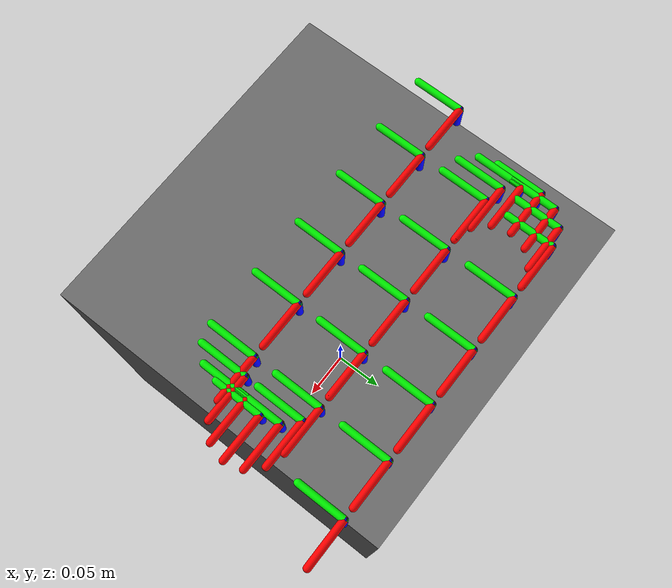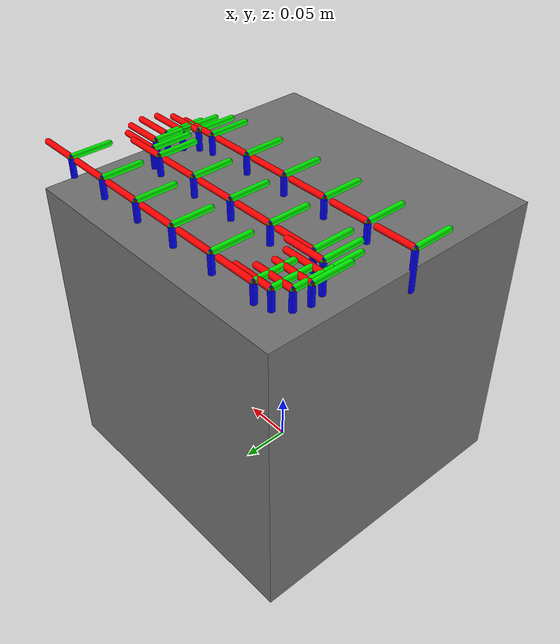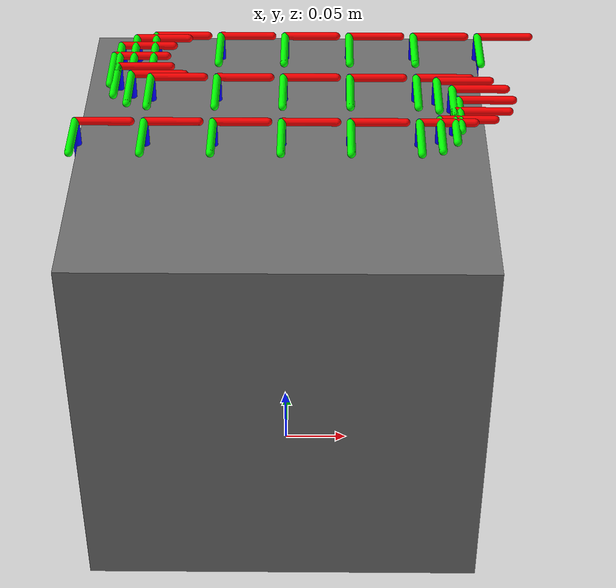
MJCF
<mujoco model="cube">
  <compiler angle="radian"/>
  <option timestep="0.01"/>

  <visual>
    <headlight diffuse="0.6 0.6 0.6" ambient="0.1 0.1 0.1" specular="0 0 0"/>
    <rgba haze="0.15 0.25 0.35 1"/>
    <global azimuth="120" elevation="-20"/>
  </visual>

  <asset>
    <mesh name="cube_mesh" file="cube.obj"/>
    <mesh name="cube_collision_mesh" file="cube.obj"/>
  </asset>

  <default>
    <geom condim="3" friction="1 0.5 0.01" solref="0.02 1" solimp="0.9 0.95 0.001"/>
  </default>

  <worldbody>
    <body name="cube" pos="0 0 0">

      <geom type="mesh" mesh="cube_mesh" rgba="0.45 0.45 0.45 1" contype="0" conaffinity="0" group="0"/>

      <!-- Collisions-->
      <geom name="cube_collision" type="mesh" mesh="cube_collision_mesh" pos="0 0 0" rgba="0.7 0.1 0.1 0.3" contype="1" conaffinity="1" group="3"/>

      <!-- center of the piece -->
      <site name="mount_cube_site" pos="0.0 0.0 0.0" size="0.005" rgba="1 0 0 1"/>

      <!-- Point 1 -->
      <body name="point_1_traj" pos="0.15 0.12 0.32" quat="0 1 0 0">
        <geom type="capsule" fromto="0 0 0 0.04 0 0" rgba="1 0 0 1" size="0.003" contype="0" conaffinity="0"/>
        <geom type="capsule" fromto="0 0 0 0 0.04 0" rgba="0 1 0 1" size="0.003" contype="0" conaffinity="0"/>
        <geom type="capsule" fromto="0 0 0 0 0 0.04" rgba="0 0 1 1" size="0.003" contype="0" conaffinity="0"/>
      </body>

      <!-- Point 2 -->
      <body name="point_2_traj" pos="0.1 0.12 0.32" quat="0 1 0 0">
        <geom type="capsule" fromto="0 0 0 0.04 0 0" rgba="1 0 0 1" size="0.003" contype="0" conaffinity="0"/>
        <geom type="capsule" fromto="0 0 0 0 0.04 0" rgba="0 1 0 1" size="0.003" contype="0" conaffinity="0"/>
        <geom type="capsule" fromto="0 0 0 0 0 0.04" rgba="0 0 1 1" size="0.003" contype="0" conaffinity="0"/>
      </body>

      <!-- Point 3 -->
      <body name="point_3_traj" pos="0.05 0.12 0.32" quat="0 1 0 0">
        <geom type="capsule" fromto="0 0 0 0.04 0 0" rgba="1 0 0 1" size="0.003" contype="0" conaffinity="0"/>
        <geom type="capsule" fromto="0 0 0 0 0.04 0" rgba="0 1 0 1" size="0.003" contype="0" conaffinity="0"/>
        <geom type="capsule" fromto="0 0 0 0 0 0.04" rgba="0 0 1 1" size="0.003" contype="0" conaffinity="0"/>
      </body>

        <!-- Point 4 -->
      <body name="point_4_traj" pos="0.0 0.12 0.32" quat="0 1 0 0">
        <geom type="capsule" fromto="0 0 0 0.04 0 0" rgba="1 0 0 1" size="0.003" contype="0" conaffinity="0"/>
        <geom type="capsule" fromto="0 0 0 0 0.04 0" rgba="0 1 0 1" size="0.003" contype="0" conaffinity="0"/>
        <geom type="capsule" fromto="0 0 0 0 0 0.04" rgba="0 0 1 1" size="0.003" contype="0" conaffinity="0"/>
      </body>

      <!-- Point 5 -->
      <body name="point_5_traj" pos="-0.05 0.12 0.32" quat="0 1 0 0">
        <geom type="capsule" fromto="0 0 0 0.04 0 0" rgba="1 0 0 1" size="0.003" contype="0" conaffinity="0"/>
        <geom type="capsule" fromto="0 0 0 0 0.04 0" rgba="0 1 0 1" size="0.003" contype="0" conaffinity="0"/>
        <geom type="capsule" fromto="0 0 0 0 0 0.04" rgba="0 0 1 1" size="0.003" contype="0" conaffinity="0"/>
      </body>

      <!-- Point 6 -->
      <body name="point_6_traj" pos="-0.1 0.12 0.32" quat="0 1 0 0">
        <geom type="capsule" fromto="0 0 0 0.04 0 0" rgba="1 0 0 1" size="0.003" contype="0" conaffinity="0"/>
        <geom type="capsule" fromto="0 0 0 0 0.04 0" rgba="0 1 0 1" size="0.003" contype="0" conaffinity="0"/>
        <geom type="capsule" fromto="0 0 0 0 0 0.04" rgba="0 0 1 1" size="0.003" contype="0" conaffinity="0"/>
      </body>

      <!-- Point 7 -->
      <body name="point_7_traj" pos="-0.115 0.116 0.32" quat="0 1 0 0">
        <geom type="capsule" fromto="0 0 0 0.04 0 0" rgba="1 0 0 1" size="0.003" contype="0" conaffinity="0"/>
        <geom type="capsule" fromto="0 0 0 0 0.04 0" rgba="0 1 0 1" size="0.003" contype="0" conaffinity="0"/>
        <geom type="capsule" fromto="0 0 0 0 0 0.04" rgba="0 0 1 1" size="0.003" contype="0" conaffinity="0"/>
      </body>

      <!-- Point 8 -->
      <body name="point_8_traj" pos="-0.126 0.105 0.32" quat="0 1 0 0">
        <geom type="capsule" fromto="0 0 0 0.04 0 0" rgba="1 0 0 1" size="0.003" contype="0" conaffinity="0"/>
        <geom type="capsule" fromto="0 0 0 0 0.04 0" rgba="0 1 0 1" size="0.003" contype="0" conaffinity="0"/>
        <geom type="capsule" fromto="0 0 0 0 0 0.04" rgba="0 0 1 1" size="0.003" contype="0" conaffinity="0"/>
      </body>

      <!-- Point 9 -->
      <body name="point_9_traj" pos="-0.130 0.09 0.32" quat="0 1 0 0">
        <geom type="capsule" fromto="0 0 0 0.04 0 0" rgba="1 0 0 1" size="0.003" contype="0" conaffinity="0"/>
        <geom type="capsule" fromto="0 0 0 0 0.04 0" rgba="0 1 0 1" size="0.003" contype="0" conaffinity="0"/>
        <geom type="capsule" fromto="0 0 0 0 0 0.04" rgba="0 0 1 1" size="0.003" contype="0" conaffinity="0"/>
      </body>

      <!-- Point 10 -->
      <body name="point_10_traj" pos="-0.126 0.075 0.32" quat="0 1 0 0">
        <geom type="capsule" fromto="0 0 0 0.04 0 0" rgba="1 0 0 1" size="0.003" contype="0" conaffinity="0"/>
        <geom type="capsule" fromto="0 0 0 0 0.04 0" rgba="0 1 0 1" size="0.003" contype="0" conaffinity="0"/>
        <geom type="capsule" fromto="0 0 0 0 0 0.04" rgba="0 0 1 1" size="0.003" contype="0" conaffinity="0"/>
      </body>

      <!-- Point 11 -->
      <body name="point_11_traj" pos="-0.115 0.064 0.32" quat="0 1 0 0">
        <geom type="capsule" fromto="0 0 0 0.04 0 0" rgba="1 0 0 1" size="0.003" contype="0" conaffinity="0"/>
        <geom type="capsule" fromto="0 0 0 0 0.04 0" rgba="0 1 0 1" size="0.003" contype="0" conaffinity="0"/>
        <geom type="capsule" fromto="0 0 0 0 0 0.04" rgba="0 0 1 1" size="0.003" contype="0" conaffinity="0"/>
      </body>

      <!-- Point 12 -->
      <body name="point_12_traj" pos="-0.1 0.06 0.32" quat="0 1 0 0">
        <geom type="capsule" fromto="0 0 0 0.04 0 0" rgba="1 0 0 1" size="0.003" contype="0" conaffinity="0"/>
        <geom type="capsule" fromto="0 0 0 0 0.04 0" rgba="0 1 0 1" size="0.003" contype="0" conaffinity="0"/>
        <geom type="capsule" fromto="0 0 0 0 0 0.04" rgba="0 0 1 1" size="0.003" contype="0" conaffinity="0"/>
      </body>

      <!-- Point 13 -->
      <body name="point_13_traj" pos="-0.05 0.06 0.32" quat="0 1 0 0">
        <geom type="capsule" fromto="0 0 0 0.04 0 0" rgba="1 0 0 1" size="0.003" contype="0" conaffinity="0"/>
        <geom type="capsule" fromto="0 0 0 0 0.04 0" rgba="0 1 0 1" size="0.003" contype="0" conaffinity="0"/>
        <geom type="capsule" fromto="0 0 0 0 0 0.04" rgba="0 0 1 1" size="0.003" contype="0" conaffinity="0"/>
      </body>

      <!-- Point 14 -->
      <body name="point_14_traj" pos="-0.0 0.06 0.32" quat="0 1 0 0">
        <geom type="capsule" fromto="0 0 0 0.04 0 0" rgba="1 0 0 1" size="0.003" contype="0" conaffinity="0"/>
        <geom type="capsule" fromto="0 0 0 0 0.04 0" rgba="0 1 0 1" size="0.003" contype="0" conaffinity="0"/>
        <geom type="capsule" fromto="0 0 0 0 0 0.04" rgba="0 0 1 1" size="0.003" contype="0" conaffinity="0"/>
      </body>

      <!-- Point 15 -->
      <body name="point_15_traj" pos="0.05 0.06 0.32" quat="0 1 0 0">
        <geom type="capsule" fromto="0 0 0 0.04 0 0" rgba="1 0 0 1" size="0.003" contype="0" conaffinity="0"/>
        <geom type="capsule" fromto="0 0 0 0 0.04 0" rgba="0 1 0 1" size="0.003" contype="0" conaffinity="0"/>
        <geom type="capsule" fromto="0 0 0 0 0 0.04" rgba="0 0 1 1" size="0.003" contype="0" conaffinity="0"/>
      </body>

      <!-- Point 16 -->
      <body name="point_16_traj" pos="0.1 0.06 0.32" quat="0 1 0 0">
        <geom type="capsule" fromto="0 0 0 0.04 0 0" rgba="1 0 0 1" size="0.003" contype="0" conaffinity="0"/>
        <geom type="capsule" fromto="0 0 0 0 0.04 0" rgba="0 1 0 1" size="0.003" contype="0" conaffinity="0"/>
        <geom type="capsule" fromto="0 0 0 0 0 0.04" rgba="0 0 1 1" size="0.003" contype="0" conaffinity="0"/>
      </body>

      <!-- Point 17 -->
      <body name="point_17_traj" pos="0.115 0.056 0.32" quat="0 1 0 0">
        <geom type="capsule" fromto="0 0 0 0.04 0 0" rgba="1 0 0 1" size="0.003" contype="0" conaffinity="0"/>
        <geom type="capsule" fromto="0 0 0 0 0.04 0" rgba="0 1 0 1" size="0.003" contype="0" conaffinity="0"/>
        <geom type="capsule" fromto="0 0 0 0 0 0.04" rgba="0 0 1 1" size="0.003" contype="0" conaffinity="0"/>
      </body>

      <!-- Point 18 -->
      <body name="point_18_traj" pos="0.126 0.045 0.32" quat="0 1 0 0">
        <geom type="capsule" fromto="0 0 0 0.04 0 0" rgba="1 0 0 1" size="0.003" contype="0" conaffinity="0"/>
        <geom type="capsule" fromto="0 0 0 0 0.04 0" rgba="0 1 0 1" size="0.003" contype="0" conaffinity="0"/>
        <geom type="capsule" fromto="0 0 0 0 0 0.04" rgba="0 0 1 1" size="0.003" contype="0" conaffinity="0"/>
      </body>

      <!-- Point 19 -->
      <body name="point_19_traj" pos="0.13 0.03 0.32" quat="0 1 0 0">
        <geom type="capsule" fromto="0 0 0 0.04 0 0" rgba="1 0 0 1" size="0.003" contype="0" conaffinity="0"/>
        <geom type="capsule" fromto="0 0 0 0 0.04 0" rgba="0 1 0 1" size="0.003" contype="0" conaffinity="0"/>
        <geom type="capsule" fromto="0 0 0 0 0 0.04" rgba="0 0 1 1" size="0.003" contype="0" conaffinity="0"/>
      </body>

      <!-- Point 20 -->
      <body name="point_20_traj" pos="0.126 0.015 0.32" quat="0 1 0 0">
        <geom type="capsule" fromto="0 0 0 0.04 0 0" rgba="1 0 0 1" size="0.003" contype="0" conaffinity="0"/>
        <geom type="capsule" fromto="0 0 0 0 0.04 0" rgba="0 1 0 1" size="0.003" contype="0" conaffinity="0"/>
        <geom type="capsule" fromto="0 0 0 0 0 0.04" rgba="0 0 1 1" size="0.003" contype="0" conaffinity="0"/>
      </body>

      <!-- Point 21 -->
      <body name="point_21_traj" pos="0.115 0.004 0.32" quat="0 1 0 0">
        <geom type="capsule" fromto="0 0 0 0.04 0 0" rgba="1 0 0 1" size="0.003" contype="0" conaffinity="0"/>
        <geom type="capsule" fromto="0 0 0 0 0.04 0" rgba="0 1 0 1" size="0.003" contype="0" conaffinity="0"/>
        <geom type="capsule" fromto="0 0 0 0 0 0.04" rgba="0 0 1 1" size="0.003" contype="0" conaffinity="0"/>
      </body>

      <!-- Point 22 -->
      <body name="point_22_traj" pos="0.1 0.0 0.32" quat="0 1 0 0">
        <geom type="capsule" fromto="0 0 0 0.04 0 0" rgba="1 0 0 1" size="0.003" contype="0" conaffinity="0"/>
        <geom type="capsule" fromto="0 0 0 0 0.04 0" rgba="0 1 0 1" size="0.003" contype="0" conaffinity="0"/>
        <geom type="capsule" fromto="0 0 0 0 0 0.04" rgba="0 0 1 1" size="0.003" contype="0" conaffinity="0"/>
      </body>

      <!-- Point 23 -->
      <body name="point_23_traj" pos="0.05 0.0 0.32" quat="0 1 0 0">
        <geom type="capsule" fromto="0 0 0 0.04 0 0" rgba="1 0 0 1" size="0.003" contype="0" conaffinity="0"/>
        <geom type="capsule" fromto="0 0 0 0 0.04 0" rgba="0 1 0 1" size="0.003" contype="0" conaffinity="0"/>
        <geom type="capsule" fromto="0 0 0 0 0 0.04" rgba="0 0 1 1" size="0.003" contype="0" conaffinity="0"/>
      </body>

      <!-- Point 24 -->
      <body name="point_24_traj" pos="0.0 0.0 0.32" quat="0 1 0 0">
        <geom type="capsule" fromto="0 0 0 0.04 0 0" rgba="1 0 0 1" size="0.003" contype="0" conaffinity="0"/>
        <geom type="capsule" fromto="0 0 0 0 0.04 0" rgba="0 1 0 1" size="0.003" contype="0" conaffinity="0"/>
        <geom type="capsule" fromto="0 0 0 0 0 0.04" rgba="0 0 1 1" size="0.003" contype="0" conaffinity="0"/>
      </body>

      <!-- Point 25 -->
      <body name="point_25_traj" pos="-0.05 0.0 0.32" quat="0 1 0 0">
        <geom type="capsule" fromto="0 0 0 0.04 0 0" rgba="1 0 0 1" size="0.003" contype="0" conaffinity="0"/>
        <geom type="capsule" fromto="0 0 0 0 0.04 0" rgba="0 1 0 1" size="0.003" contype="0" conaffinity="0"/>
        <geom type="capsule" fromto="0 0 0 0 0 0.04" rgba="0 0 1 1" size="0.003" contype="0" conaffinity="0"/>
      </body>

      <!-- Point 26 -->
      <body name="point_26_traj" pos="-0.1 0.0 0.32" quat="0 1 0 0">
        <geom type="capsule" fromto="0 0 0 0.04 0 0" rgba="1 0 0 1" size="0.003" contype="0" conaffinity="0"/>
        <geom type="capsule" fromto="0 0 0 0 0.04 0" rgba="0 1 0 1" size="0.003" contype="0" conaffinity="0"/>
        <geom type="capsule" fromto="0 0 0 0 0 0.04" rgba="0 0 1 1" size="0.003" contype="0" conaffinity="0"/>
      </body>

      <!-- Point 27 -->
      <body name="point_27_traj" pos="-0.15 0.0 0.32" quat="0 1 0 0">
        <geom type="capsule" fromto="0 0 0 0.04 0 0" rgba="1 0 0 1" size="0.003" contype="0" conaffinity="0"/>
        <geom type="capsule" fromto="0 0 0 0 0.04 0" rgba="0 1 0 1" size="0.003" contype="0" conaffinity="0"/>
        <geom type="capsule" fromto="0 0 0 0 0 0.04" rgba="0 0 1 1" size="0.003" contype="0" conaffinity="0"/>
      </body>

    </body>
  </worldbody>
</mujoco>
